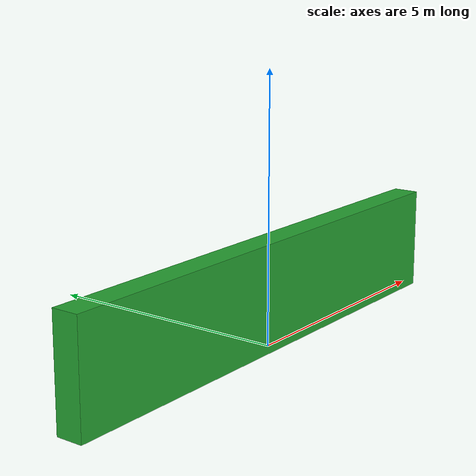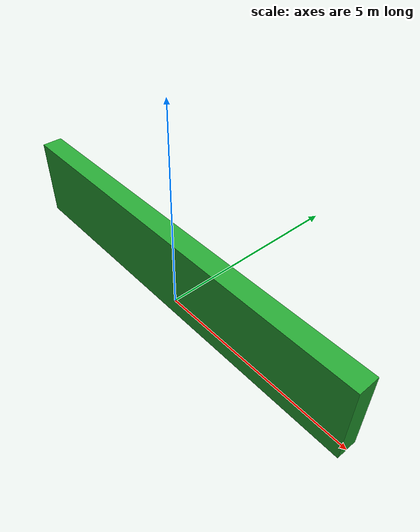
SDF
<?xml version='1.0'?>
<sdf version='1.4'>
  <model name="hedge">
  <static>true</static>
    <link name="box">
      <pose>0 0 1 0 0 0</pose>
      <collision name="collision">
        <geometry>
          <box>
            <size>10 .5 2</size>
          </box>
        </geometry>
      </collision>
      <visual name="visual">
        <geometry>
          <box>
            <size>10 .5 2</size>
          </box>
        </geometry>

        <material>
			<script>
				<uri>file://media/materials/scripts/gazebo.material</uri>
				<name>Gazebo/Green</name>
			</script>
        </material>
      </visual>
    </link>

  </model>
</sdf>
